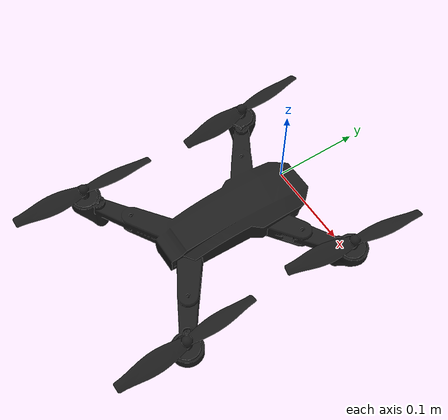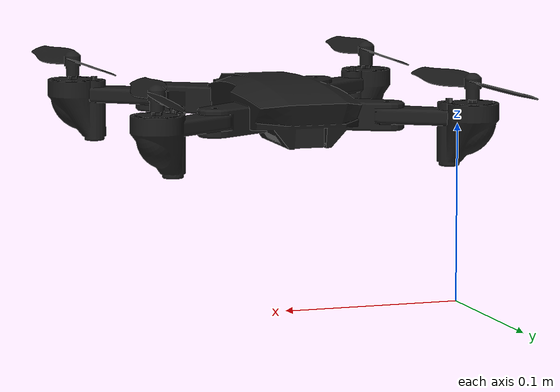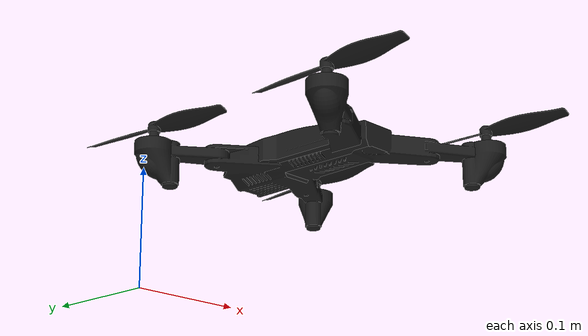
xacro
<?xml version="1.0" encoding="utf-8"?>
<robot
  name="quadx">

    <link
    name="base_link">
    <inertial>
      <origin
        xyz="0.068083 0.094742 0.12988"
        rpy="0 0 0" />
      <mass
        value="2.2965" />
      <inertia
        ixx="1"
        ixy="0"
        ixz="0"
        iyy="1"
        iyz="0"
        izz="1" />
    </inertial>
    <visual>
      <origin
        xyz="0 0 0"
        rpy="0 0 0" />
      <geometry>
        <mesh
          filename="package://quadx/meshes/base_link.STL" />
      </geometry>
      <material
        name="">
        <color
          rgba="0.1098 0.1098 0.1098 1" />
      </material>
    </visual>
    <collision>
      <origin
        xyz="0 0 0"
        rpy="0 0 0" />
      <geometry>
        <mesh
          filename="package://quadx/meshes/base_link.STL" />
      </geometry>
    </collision>
  </link>
  <link
    name="Link_1">
    <inertial>
      <origin
        xyz="-5.5511E-17 0.0087744 2.2274E-15"
        rpy="0 0 0" />
      <mass
        value="0.25674" />
      <inertia
        ixx="1"
        ixy="0"
        ixz="0"
        iyy="1"
        iyz="0"
        izz="1" />
    </inertial>
    <visual>
      <origin
        xyz="0 0 0"
        rpy="0 0 0" />
      <geometry>
        <mesh
          filename="package://quadx/meshes/Link_1.STL" />
      </geometry>
      <material
        name="">
        <color
          rgba="0.1098 0.1098 0.1098 1" />
      </material>
    </visual>
    <collision>
      <origin
        xyz="0 0 0"
        rpy="0 0 0" />
      <geometry>
        <mesh
          filename="package://quadx/meshes/Link_1.STL" />
      </geometry>
    </collision>
  </link>
  <joint
    name="Prop_1"
    type="revolute">
    <origin
      xyz="0.16125 -0.041564 0.1078"
      rpy="1.5708 0 -0.12678" />
    <parent
      link="base_link" />
    <child
      link="Link_1" />
    <axis
      xyz="0 1 0" />
    <limit
      lower="-3.14"
      upper="3.14"
      effort="0"
      velocity="0" />
  </joint>
  <link
    name="Link_2">
    <inertial>
      <origin
        xyz="-1.8169E-12 0.0087745 -2.7129E-11"
        rpy="0 0 0" />
      <mass
        value="0.2567" />
      <inertia
        ixx="1"
        ixy="0"
        ixz="0"
        iyy="1"
        iyz="0"
        izz="1" />
    </inertial>
    <visual>
      <origin
        xyz="0 0 0"
        rpy="0 0 0" />
      <geometry>
        <mesh
          filename="package://quadx/meshes/Link_2.STL" />
      </geometry>
      <material
        name="">
        <color
          rgba="0.1098 0.1098 0.1098 1" />
      </material>
    </visual>
    <collision>
      <origin
        xyz="0 0 0"
        rpy="0 0 0" />
      <geometry>
        <mesh
          filename="package://quadx/meshes/Link_2.STL" />
      </geometry>
    </collision>
  </link>
  <joint
    name="Prop_2"
    type="revolute">
    <origin
      xyz="-0.025089 -0.041567 0.1078"
      rpy="1.5708 0 0.095428" />
    <parent
      link="base_link" />
    <child
      link="Link_2" />
    <axis
      xyz="0 1 0" />
    <limit
      lower="-3.14"
      upper="3.14"
      effort="0"
      velocity="0" />
  </joint>
  <link
    name="Link_3">
    <inertial>
      <origin
        xyz="-4.7466E-09 0.0087745 5.2904E-10"
        rpy="0 0 0" />
      <mass
        value="0.25674" />
      <inertia
        ixx="1"
        ixy="0"
        ixz="0"
        iyy="1"
        iyz="0"
        izz="1" />
    </inertial>
    <visual>
      <origin
        xyz="0 0 0"
        rpy="0 0 0" />
      <geometry>
        <mesh
          filename="package://quadx/meshes/Link_3.STL" />
      </geometry>
      <material
        name="">
        <color
          rgba="0.1098 0.1098 0.1098 1" />
      </material>
    </visual>
    <collision>
      <origin
        xyz="0 0 0"
        rpy="0 0 0" />
      <geometry>
        <mesh
          filename="package://quadx/meshes/Link_3.STL" />
      </geometry>
    </collision>
  </link>
  <joint
    name="Prop_3"
    type="revolute">
    <origin
      xyz="-0.02546 -0.22426 0.1078"
      rpy="1.5708 0 3.1081" />
    <parent
      link="base_link" />
    <child
      link="Link_3" />
    <axis
      xyz="0 1 0" />
    <limit
      lower="-3.14"
      upper="3.14"
      effort="0"
      velocity="0" />
  </joint>
  <link
    name="Link_4">
    <inertial>
      <origin
        xyz="0.068083 0.094742 0.12988"
        rpy="0 0 0" />
      <mass
        value="0.25674" />
      <inertia
        ixx="1"
        ixy="0"
        ixz="0"
        iyy="1"
        iyz="0"
        izz="1" />
    </inertial>
    <visual>
      <origin
        xyz="0 0 0"
        rpy="0 0 0" />
      <geometry>
        <mesh
          filename="package://quadx/meshes/Link_4.STL" />
      </geometry>
      <material
        name="">
        <color
          rgba="0.1098 0.1098 0.1098 1" />
      </material>
    </visual>
    <collision>
      <origin
        xyz="0 0 0"
        rpy="0 0 0" />
      <geometry>
        <mesh
          filename="package://quadx/meshes/Link_4.STL" />
      </geometry>
    </collision>
  </link>
  <joint
    name="Prop_4"
    type="revolute">
    <origin
      xyz="0.16163 -0.22426 0.1078"
      rpy="1.5708 0 -3.0959" />
    <parent
      link="base_link" />
    <child
      link="Link_4" />
    <axis
      xyz="0 1 0" />
    <limit
      lower="-3.14"
      upper="3.14"
      effort="0"
      velocity="0" />
  </joint>

  <gazebo reference="base_link">
    <material>Gazebo/Black</material>
    <turnGravityOff>true</turnGravityOff>
  </gazebo>

  <gazebo reference="link_1">
    <material>Gazebo/Red</material>
    <turnGravityOff>true</turnGravityOff>
  </gazebo>

  <gazebo reference="link_2">
    <material>Gazebo/Red</material>
    <turnGravityOff>true</turnGravityOff>
  </gazebo>

  <gazebo reference="link_3">
    <material>Gazebo/White</material>
    <turnGravityOff>true</turnGravityOff>
  </gazebo>

  <gazebo reference="link_4">
    <material>Gazebo/White</material>
    <turnGravityOff>true</turnGravityOff>
  </gazebo>
  <gazebo>
   <!--add lidar-->
        <link name="hokuyo_link">
          <pose>0 0 0 0 0 0</pose>
          <collision name="collision">
            <pose>0 0 0.3 0 0 0</pose>
            <geometry>
              <box>
                <size>0.1 0.1 0.1</size>
              </box>
            </geometry>
          </collision>
          <visual name="visual">
            <pose>0 0 0.27 0 0 0</pose>
            <geometry>
              <mesh filename="package://quadx/snsr_dep/hokuyo.dae"/>
            </geometry>
          </visual>
          <inertial>
            <mass>0.016</mass>
            <inertia>
               <ixx>0.0001</ixx>
               <ixy>0</ixy>
               <ixz>0</ixz>
               <iyy>0.0001</iyy>
               <iyz>0</iyz>
               <izz>0.0001</izz>
               <!-- low intertia necessary to avoid not disturb the drone -->
            </inertia>
          </inertial>

          <sensor type="ray" name="laser">
            <pose>0 0 0.3 0 0 1.57</pose>
            <visualize>true</visualize>
            <update_rate>10</update_rate>
            <ray>
              <scan>
                <horizontal>
                  <samples>1024</samples>
                  <resolution>1</resolution>
                  <min_angle>-3.141593</min_angle>
                  <max_angle>3.141593</max_angle>
                </horizontal>
              </scan>
              <range>
                <min>0.1</min>
                <max>30</max>
                <resolution>0.1</resolution>
              </range>
            </ray>
            <plugin name="hokuyo_node" filename="libgazebo_ros_laser.so">
              <robotNamespace></robotNamespace>
              <topicName>/quadx/laser/scan</topicName>
              <frameName>/hokuyo_sensor_link</frameName>
            </plugin>
          </sensor>
        </link>

        <joint name="hokuyo_joint" type="fixed">
          <pose>0 0 0 0 0 0</pose>
          <parent>base_link</parent>
          <child>hokuyo_link</child>
        </joint>

  </gazebo>
  <gazebo>
     <!-- add kinect -->
     <link name="quadx_kinect_link">
          <pose>0 0 0 0 0 0</pose>
          <collision name="collision">
            <pose>0 0 0.3 0 0 0</pose>
            <geometry>
              <box>
                <size>0.1 0.1 0.1</size>
              </box>
            </geometry>
          </collision>
          <visual name="visual">
            <pose>0 0 0.27 0 0 0</pose>
            <geometry>
              <mesh filename="package://quadx/snsr_dep/hokuyo.dae"/>
            </geometry>
          </visual>
          <inertial>
            <mass>0.016</mass>
            <inertia>
               <ixx>0.0001</ixx>
               <ixy>0</ixy>
               <ixz>0</ixz>
               <iyy>0.0001</iyy>
               <iyz>0</iyz>
               <izz>0.0001</izz>
               <!-- low intertia necessary to avoid not disturb the drone -->
            </inertia>
          </inertial>

          <sensor name="quadx_kinect_camera" type="depth">
            <update_rate>20</update_rate>
            <camera>
              <horizontal_fov>1.047198</horizontal_fov>
              <image>
                <width>640</width>
                <height>480</height>
                <format>R8G8B8</format>
              </image>
              <clip>
                <near>0.05</near>
                <far>3</far>
              </clip>
            </camera>
            <plugin name="quadx_kinect_controller" filename="libgazebo_ros_openni_kinect.so">
              <baseline>0.2</baseline>
              <alwaysOn>true</alwaysOn>
              <updateRate>1.0</updateRate>
              <cameraName>quadx_kinect_ir</cameraName>
              <imageTopicName>/quadx_kinect/color/image_raw</imageTopicName>
              <cameraInfoTopicName>/quadx_kinect/color/camera_info</cameraInfoTopicName>
              <depthImageTopicName>/quadx_kinect/depth/image_raw</depthImageTopicName>
              <depthImageInfoTopicName>/quadx_kinect/depth/camera_info</depthImageInfoTopicName>
              <pointCloudTopicName>/quadx_kinect/depth/points</pointCloudTopicName>
              <frameName>quadx_kinect</frameName>
              <pointCloudCutoff>0.5</pointCloudCutoff>
              <pointCloudCutoffMax>3.0</pointCloudCutoffMax>
              <distortionK1>0.00000001</distortionK1>
              <distortionK2>0.00000001</distortionK2>
              <distortionK3>0.00000001</distortionK3>
              <distortionT1>0.00000001</distortionT1>
              <distortionT2>0.00000001</distortionT2>
              <CxPrime>0</CxPrime>
              <Cx>0</Cx>
              <Cy>0</Cy>
              <focalLength>0</focalLength>
              <hackBaseline>0</hackBaseline>
            </plugin>
          </sensor>
        </link>

        <joint name="quad_kinect_joint" type="fixed">
          <pose>0 0 0 0 0 0</pose>
          <parent>base_link</parent>
          <child>quadx_kinect_link</child>
        </joint>
  </gazebo>
  <!-- add imu -->
  <gazebo>
    <plugin name="imu_plugin" filename="libgazebo_ros_imu.so">
      <alwaysOn>true</alwaysOn>
      <bodyName>base_link</bodyName>
      <topicName>quadx_imu</topicName>
      <serviceName>imu_service</serviceName>
      <gaussianNoise>0.0</gaussianNoise>
      <updateRate>20.0</updateRate>
    </plugin>
  </gazebo>

   <gazebo reference="imu_link">
    <gravity>true</gravity>
    <sensor name="imu_sensor" type="imu">
      <always_on>true</always_on>
      <update_rate>100</update_rate>
      <visualize>true</visualize>
      <topic>__default_topic__</topic>
      <plugin filename="libgazebo_ros_imu_sensor.so" name="imu_plugin">
        <topicName>quadx_imu</topicName>
        <bodyName>imu_link</bodyName>
        <updateRateHZ>10.0</updateRateHZ>
        <gaussianNoise>0.0</gaussianNoise>
        <xyzOffset>0 0 0</xyzOffset>
        <rpyOffset>0 0 0</rpyOffset>
        <frameName>imu_link</frameName>
        <initialOrientationAsReference>false</initialOrientationAsReference>
      </plugin>
      <pose>0 0 0 0 0 0</pose>
    </sensor>
  </gazebo>

</robot>
